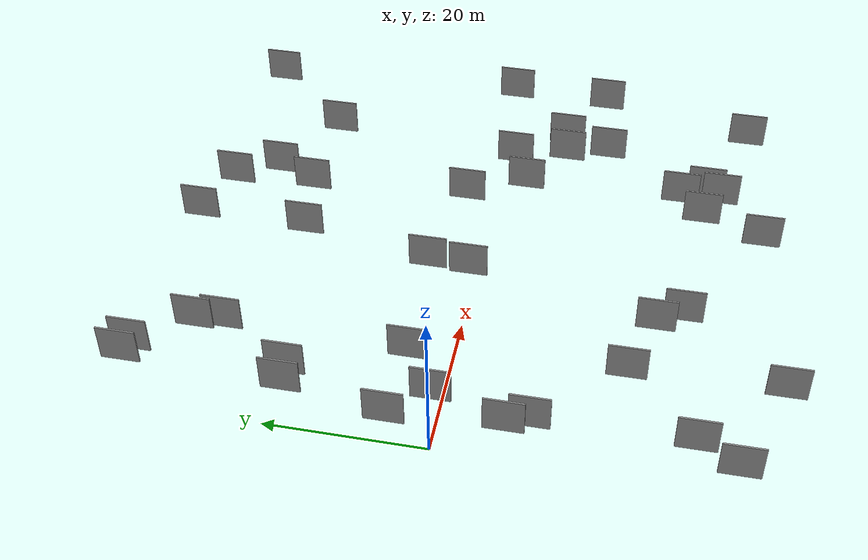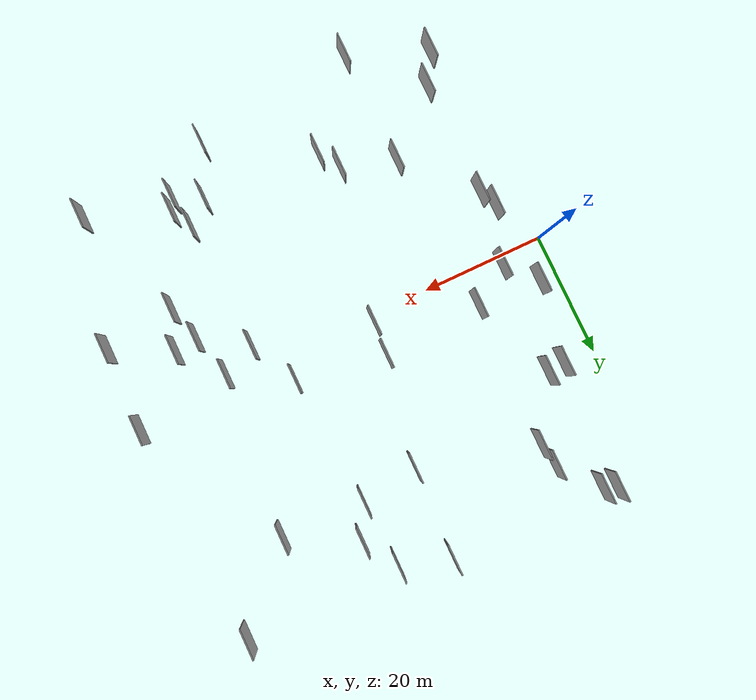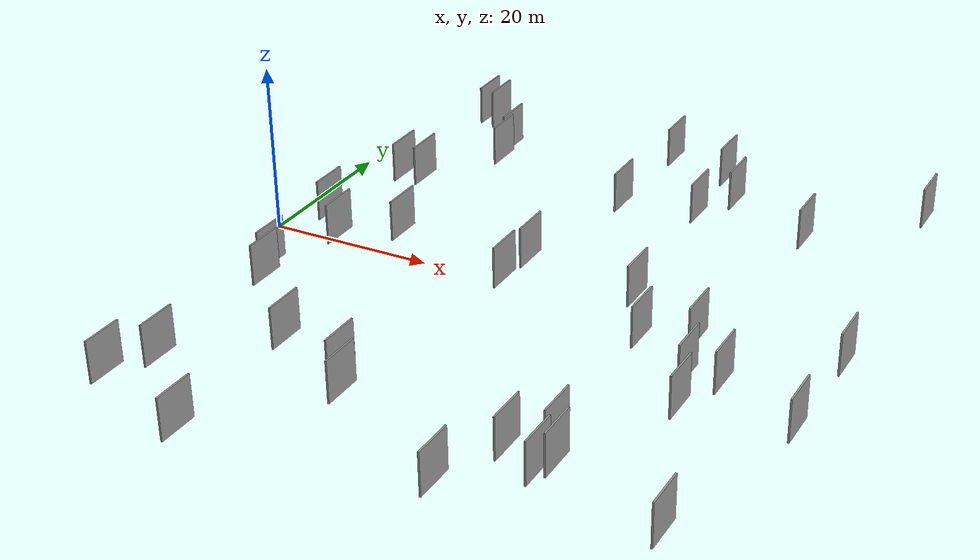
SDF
<sdf version="1.6">
 <world name="default">
  <scene>
   <sky><clouds><speed>12</speed></clouds></sky>
   <ambient>0.4 0.4 0.4 1</ambient>
   <background>0.7 0.7 0.7 1</background>
   <shadows>1</shadows>
  </scene>
  <gravity>0 0 -9.8066</gravity>
  <magnetic_field>6e-06 2.3e-05 -4.2e-05</magnetic_field>
  <physics default="0" name="default_physics" type="ode">
   <ode>
    <solver>
     <type>quick</type>
     <iters>10</iters>
     <sor>1.0</sor>
     <use_dynamic_moi_rescaling>0</use_dynamic_moi_rescaling>
    </solver>
    <constraints>
     <cfm>0</cfm>
     <erp>0.2</erp>
     <contact_max_correcting_vel>100</contact_max_correcting_vel>
     <contact_surface_layer>0.001</contact_surface_layer>
    </constraints>
   </ode>
   <max_step_size>0.004</max_step_size>
   <real_time_factor>1</real_time_factor>
   <real_time_update_rate>250</real_time_update_rate>
  </physics>
  <light name="sun" type="directional">
   <pose>0 0 10 0 0 0</pose>
   <diffuse>0.8 0.8 0.8 1</diffuse>
   <specular>0.2 0.2 0.2 1</specular>
   <attenuation>
    <range>1000</range>
    <constant>0.9</constant>
    <linear>0.01</linear>
    <quadratic>0.001</quadratic>
   </attenuation>
   <direction>-0.5 0.1 -0.9</direction>
  </light>
  <model name="grey_wall_1">
   <static>1</static>
   <pose>48.7667 -3.5897 0.0 0.000000 0.000000 1.570796</pose>
   <link name="link">
    <pose>0 0 2.50 0 0 0</pose>
    <collision name="collision"><geometry><box><size>5.00 0.2 5.00</size></box></geometry></collision>
    <visual name="visual">
     <cast_shadows>0</cast_shadows>
     <geometry><box><size>5.00 0.2 5.00</size></box></geometry>
     <material>
      <script>
       <uri>model://grey_wall/materials/scripts</uri>
       <uri>model://grey_wall/materials/textures</uri>
       <name>vrc/grey_wall</name>
      </script>
     </material>
    </visual>
   </link>
  </model>
  <model name="grey_wall_2">
   <static>1</static>
   <pose>8.6576 39.2392 0.0 0.000000 0.000000 1.570796</pose>
   <link name="link">
    <pose>0 0 2.50 0 0 0</pose>
    <collision name="collision"><geometry><box><size>5.00 0.2 5.00</size></box></geometry></collision>
    <visual name="visual">
     <cast_shadows>0</cast_shadows>
     <geometry><box><size>5.00 0.2 5.00</size></box></geometry>
     <material>
      <script>
       <uri>model://grey_wall/materials/scripts</uri>
       <uri>model://grey_wall/materials/textures</uri>
       <name>vrc/grey_wall</name>
      </script>
     </material>
    </visual>
   </link>
  </model>
  <model name="grey_wall_3">
   <static>1</static>
   <pose>5.6364 19.3057 0.0 0.000000 0.000000 1.570796</pose>
   <link name="link">
    <pose>0 0 2.50 0 0 0</pose>
    <collision name="collision"><geometry><box><size>5.00 0.2 5.00</size></box></geometry></collision>
    <visual name="visual">
     <cast_shadows>0</cast_shadows>
     <geometry><box><size>5.00 0.2 5.00</size></box></geometry>
     <material>
      <script>
       <uri>model://grey_wall/materials/scripts</uri>
       <uri>model://grey_wall/materials/textures</uri>
       <name>vrc/grey_wall</name>
      </script>
     </material>
    </visual>
   </link>
  </model>
  <model name="grey_wall_4">
   <static>1</static>
   <pose>42.3247 36.5289 0.0 0.000000 0.000000 1.570796</pose>
   <link name="link">
    <pose>0 0 2.50 0 0 0</pose>
    <collision name="collision"><geometry><box><size>5.00 0.2 5.00</size></box></geometry></collision>
    <visual name="visual">
     <cast_shadows>0</cast_shadows>
     <geometry><box><size>5.00 0.2 5.00</size></box></geometry>
     <material>
      <script>
       <uri>model://grey_wall/materials/scripts</uri>
       <uri>model://grey_wall/materials/textures</uri>
       <name>vrc/grey_wall</name>
      </script>
     </material>
    </visual>
   </link>
  </model>
  <model name="grey_wall_5">
   <static>1</static>
   <pose>29.7913 1.0914 0.0 0.000000 0.000000 1.570796</pose>
   <link name="link">
    <pose>0 0 2.50 0 0 0</pose>
    <collision name="collision"><geometry><box><size>5.00 0.2 5.00</size></box></geometry></collision>
    <visual name="visual">
     <cast_shadows>0</cast_shadows>
     <geometry><box><size>5.00 0.2 5.00</size></box></geometry>
     <material>
      <script>
       <uri>model://grey_wall/materials/scripts</uri>
       <uri>model://grey_wall/materials/textures</uri>
       <name>vrc/grey_wall</name>
      </script>
     </material>
    </visual>
   </link>
  </model>
  <model name="grey_wall_6">
   <static>1</static>
   <pose>56.1538 -8.3670 0.0 0.000000 0.000000 1.570796</pose>
   <link name="link">
    <pose>0 0 2.50 0 0 0</pose>
    <collision name="collision"><geometry><box><size>5.00 0.2 5.00</size></box></geometry></collision>
    <visual name="visual">
     <cast_shadows>0</cast_shadows>
     <geometry><box><size>5.00 0.2 5.00</size></box></geometry>
     <material>
      <script>
       <uri>model://grey_wall/materials/scripts</uri>
       <uri>model://grey_wall/materials/textures</uri>
       <name>vrc/grey_wall</name>
      </script>
     </material>
    </visual>
   </link>
  </model>
  <model name="grey_wall_7">
   <static>1</static>
   <pose>13.7642 5.5562 0.0 0.000000 0.000000 1.570796</pose>
   <link name="link">
    <pose>0 0 2.50 0 0 0</pose>
    <collision name="collision"><geometry><box><size>5.00 0.2 5.00</size></box></geometry></collision>
    <visual name="visual">
     <cast_shadows>0</cast_shadows>
     <geometry><box><size>5.00 0.2 5.00</size></box></geometry>
     <material>
      <script>
       <uri>model://grey_wall/materials/scripts</uri>
       <uri>model://grey_wall/materials/textures</uri>
       <name>vrc/grey_wall</name>
      </script>
     </material>
    </visual>
   </link>
  </model>
  <model name="grey_wall_8">
   <static>1</static>
   <pose>43.0100 25.6684 0.0 0.000000 0.000000 1.570796</pose>
   <link name="link">
    <pose>0 0 2.50 0 0 0</pose>
    <collision name="collision"><geometry><box><size>5.00 0.2 5.00</size></box></geometry></collision>
    <visual name="visual">
     <cast_shadows>0</cast_shadows>
     <geometry><box><size>5.00 0.2 5.00</size></box></geometry>
     <material>
      <script>
       <uri>model://grey_wall/materials/scripts</uri>
       <uri>model://grey_wall/materials/textures</uri>
       <name>vrc/grey_wall</name>
      </script>
     </material>
    </visual>
   </link>
  </model>
  <model name="grey_wall_9">
   <static>1</static>
   <pose>69.5566 -12.5910 0.0 0.000000 0.000000 1.570796</pose>
   <link name="link">
    <pose>0 0 2.50 0 0 0</pose>
    <collision name="collision"><geometry><box><size>5.00 0.2 5.00</size></box></geometry></collision>
    <visual name="visual">
     <cast_shadows>0</cast_shadows>
     <geometry><box><size>5.00 0.2 5.00</size></box></geometry>
     <material>
      <script>
       <uri>model://grey_wall/materials/scripts</uri>
       <uri>model://grey_wall/materials/textures</uri>
       <name>vrc/grey_wall</name>
      </script>
     </material>
    </visual>
   </link>
  </model>
  <model name="grey_wall_10">
   <static>1</static>
   <pose>3.0416 -34.9562 0.0 0.000000 0.000000 1.570796</pose>
   <link name="link">
    <pose>0 0 2.50 0 0 0</pose>
    <collision name="collision"><geometry><box><size>5.00 0.2 5.00</size></box></geometry></collision>
    <visual name="visual">
     <cast_shadows>0</cast_shadows>
     <geometry><box><size>5.00 0.2 5.00</size></box></geometry>
     <material>
      <script>
       <uri>model://grey_wall/materials/scripts</uri>
       <uri>model://grey_wall/materials/textures</uri>
       <name>vrc/grey_wall</name>
      </script>
     </material>
    </visual>
   </link>
  </model>
  <model name="grey_wall_11">
   <static>1</static>
   <pose>34.2192 38.9786 0.0 0.000000 0.000000 1.570796</pose>
   <link name="link">
    <pose>0 0 2.50 0 0 0</pose>
    <collision name="collision"><geometry><box><size>5.00 0.2 5.00</size></box></geometry></collision>
    <visual name="visual">
     <cast_shadows>0</cast_shadows>
     <geometry><box><size>5.00 0.2 5.00</size></box></geometry>
     <material>
      <script>
       <uri>model://grey_wall/materials/scripts</uri>
       <uri>model://grey_wall/materials/textures</uri>
       <name>vrc/grey_wall</name>
      </script>
     </material>
    </visual>
   </link>
  </model>
  <model name="grey_wall_12">
   <static>1</static>
   <pose>5.6495 -10.6741 0.0 0.000000 0.000000 1.570796</pose>
   <link name="link">
    <pose>0 0 2.50 0 0 0</pose>
    <collision name="collision"><geometry><box><size>5.00 0.2 5.00</size></box></geometry></collision>
    <visual name="visual">
     <cast_shadows>0</cast_shadows>
     <geometry><box><size>5.00 0.2 5.00</size></box></geometry>
     <material>
      <script>
       <uri>model://grey_wall/materials/scripts</uri>
       <uri>model://grey_wall/materials/textures</uri>
       <name>vrc/grey_wall</name>
      </script>
     </material>
    </visual>
   </link>
  </model>
  <model name="grey_wall_13">
   <static>1</static>
   <pose>14.3920 29.3328 0.0 0.000000 0.000000 1.570796</pose>
   <link name="link">
    <pose>0 0 2.50 0 0 0</pose>
    <collision name="collision"><geometry><box><size>5.00 0.2 5.00</size></box></geometry></collision>
    <visual name="visual">
     <cast_shadows>0</cast_shadows>
     <geometry><box><size>5.00 0.2 5.00</size></box></geometry>
     <material>
      <script>
       <uri>model://grey_wall/materials/scripts</uri>
       <uri>model://grey_wall/materials/textures</uri>
       <name>vrc/grey_wall</name>
      </script>
     </material>
    </visual>
   </link>
  </model>
  <model name="grey_wall_14">
   <static>1</static>
   <pose>45.7584 30.9657 0.0 0.000000 0.000000 1.570796</pose>
   <link name="link">
    <pose>0 0 2.50 0 0 0</pose>
    <collision name="collision"><geometry><box><size>5.00 0.2 5.00</size></box></geometry></collision>
    <visual name="visual">
     <cast_shadows>0</cast_shadows>
     <geometry><box><size>5.00 0.2 5.00</size></box></geometry>
     <material>
      <script>
       <uri>model://grey_wall/materials/scripts</uri>
       <uri>model://grey_wall/materials/textures</uri>
       <name>vrc/grey_wall</name>
      </script>
     </material>
    </visual>
   </link>
  </model>
  <model name="grey_wall_15">
   <static>1</static>
   <pose>54.2456 -1.1777 0.0 0.000000 0.000000 1.570796</pose>
   <link name="link">
    <pose>0 0 2.50 0 0 0</pose>
    <collision name="collision"><geometry><box><size>5.00 0.2 5.00</size></box></geometry></collision>
    <visual name="visual">
     <cast_shadows>0</cast_shadows>
     <geometry><box><size>5.00 0.2 5.00</size></box></geometry>
     <material>
      <script>
       <uri>model://grey_wall/materials/scripts</uri>
       <uri>model://grey_wall/materials/textures</uri>
       <name>vrc/grey_wall</name>
      </script>
     </material>
    </visual>
   </link>
  </model>
  <model name="grey_wall_16">
   <static>1</static>
   <pose>7.5877 1.4294 0.0 0.000000 0.000000 1.570796</pose>
   <link name="link">
    <pose>0 0 2.50 0 0 0</pose>
    <collision name="collision"><geometry><box><size>5.00 0.2 5.00</size></box></geometry></collision>
    <visual name="visual">
     <cast_shadows>0</cast_shadows>
     <geometry><box><size>5.00 0.2 5.00</size></box></geometry>
     <material>
      <script>
       <uri>model://grey_wall/materials/scripts</uri>
       <uri>model://grey_wall/materials/textures</uri>
       <name>vrc/grey_wall</name>
      </script>
     </material>
    </visual>
   </link>
  </model>
  <model name="grey_wall_17">
   <static>1</static>
   <pose>30.2131 6.5364 0.0 0.000000 0.000000 1.570796</pose>
   <link name="link">
    <pose>0 0 2.50 0 0 0</pose>
    <collision name="collision"><geometry><box><size>5.00 0.2 5.00</size></box></geometry></collision>
    <visual name="visual">
     <cast_shadows>0</cast_shadows>
     <geometry><box><size>5.00 0.2 5.00</size></box></geometry>
     <material>
      <script>
       <uri>model://grey_wall/materials/scripts</uri>
       <uri>model://grey_wall/materials/textures</uri>
       <name>vrc/grey_wall</name>
      </script>
     </material>
    </visual>
   </link>
  </model>
  <model name="grey_wall_18">
   <static>1</static>
   <pose>67.7466 37.0043 0.0 0.000000 0.000000 1.570796</pose>
   <link name="link">
    <pose>0 0 2.50 0 0 0</pose>
    <collision name="collision"><geometry><box><size>5.00 0.2 5.00</size></box></geometry></collision>
    <visual name="visual">
     <cast_shadows>0</cast_shadows>
     <geometry><box><size>5.00 0.2 5.00</size></box></geometry>
     <material>
      <script>
       <uri>model://grey_wall/materials/scripts</uri>
       <uri>model://grey_wall/materials/textures</uri>
       <name>vrc/grey_wall</name>
      </script>
     </material>
    </visual>
   </link>
  </model>
  <model name="grey_wall_19">
   <static>1</static>
   <pose>69.8926 1.0822 0.0 0.000000 0.000000 1.570796</pose>
   <link name="link">
    <pose>0 0 2.50 0 0 0</pose>
    <collision name="collision"><geometry><box><size>5.00 0.2 5.00</size></box></geometry></collision>
    <visual name="visual">
     <cast_shadows>0</cast_shadows>
     <geometry><box><size>5.00 0.2 5.00</size></box></geometry>
     <material>
      <script>
       <uri>model://grey_wall/materials/scripts</uri>
       <uri>model://grey_wall/materials/textures</uri>
       <name>vrc/grey_wall</name>
      </script>
     </material>
    </visual>
   </link>
  </model>
  <model name="grey_wall_20">
   <static>1</static>
   <pose>51.3743 -28.3332 0.0 0.000000 0.000000 1.570796</pose>
   <link name="link">
    <pose>0 0 2.50 0 0 0</pose>
    <collision name="collision"><geometry><box><size>5.00 0.2 5.00</size></box></geometry></collision>
    <visual name="visual">
     <cast_shadows>0</cast_shadows>
     <geometry><box><size>5.00 0.2 5.00</size></box></geometry>
     <material>
      <script>
       <uri>model://grey_wall/materials/scripts</uri>
       <uri>model://grey_wall/materials/textures</uri>
       <name>vrc/grey_wall</name>
      </script>
     </material>
    </visual>
   </link>
  </model>
  <model name="grey_wall_21">
   <static>1</static>
   <pose>15.5185 -20.9836 0.0 0.000000 0.000000 1.570796</pose>
   <link name="link">
    <pose>0 0 2.50 0 0 0</pose>
    <collision name="collision"><geometry><box><size>5.00 0.2 5.00</size></box></geometry></collision>
    <visual name="visual">
     <cast_shadows>0</cast_shadows>
     <geometry><box><size>5.00 0.2 5.00</size></box></geometry>
     <material>
      <script>
       <uri>model://grey_wall/materials/scripts</uri>
       <uri>model://grey_wall/materials/textures</uri>
       <name>vrc/grey_wall</name>
      </script>
     </material>
    </visual>
   </link>
  </model>
  <model name="grey_wall_22">
   <static>1</static>
   <pose>64.6149 -33.4672 0.0 0.000000 0.000000 1.570796</pose>
   <link name="link">
    <pose>0 0 2.50 0 0 0</pose>
    <collision name="collision"><geometry><box><size>5.00 0.2 5.00</size></box></geometry></collision>
    <visual name="visual">
     <cast_shadows>0</cast_shadows>
     <geometry><box><size>5.00 0.2 5.00</size></box></geometry>
     <material>
      <script>
       <uri>model://grey_wall/materials/scripts</uri>
       <uri>model://grey_wall/materials/textures</uri>
       <name>vrc/grey_wall</name>
      </script>
     </material>
    </visual>
   </link>
  </model>
  <model name="grey_wall_23">
   <static>1</static>
   <pose>49.6263 -24.9053 0.0 0.000000 0.000000 1.570796</pose>
   <link name="link">
    <pose>0 0 2.50 0 0 0</pose>
    <collision name="collision"><geometry><box><size>5.00 0.2 5.00</size></box></geometry></collision>
    <visual name="visual">
     <cast_shadows>0</cast_shadows>
     <geometry><box><size>5.00 0.2 5.00</size></box></geometry>
     <material>
      <script>
       <uri>model://grey_wall/materials/scripts</uri>
       <uri>model://grey_wall/materials/textures</uri>
       <name>vrc/grey_wall</name>
      </script>
     </material>
    </visual>
   </link>
  </model>
  <model name="grey_wall_24">
   <static>1</static>
   <pose>57.7437 -14.0495 0.0 0.000000 0.000000 1.570796</pose>
   <link name="link">
    <pose>0 0 2.50 0 0 0</pose>
    <collision name="collision"><geometry><box><size>5.00 0.2 5.00</size></box></geometry></collision>
    <visual name="visual">
     <cast_shadows>0</cast_shadows>
     <geometry><box><size>5.00 0.2 5.00</size></box></geometry>
     <material>
      <script>
       <uri>model://grey_wall/materials/scripts</uri>
       <uri>model://grey_wall/materials/textures</uri>
       <name>vrc/grey_wall</name>
      </script>
     </material>
    </visual>
   </link>
  </model>
  <model name="grey_wall_25">
   <static>1</static>
   <pose>56.6269 25.2751 0.0 0.000000 0.000000 1.570796</pose>
   <link name="link">
    <pose>0 0 2.50 0 0 0</pose>
    <collision name="collision"><geometry><box><size>5.00 0.2 5.00</size></box></geometry></collision>
    <visual name="visual">
     <cast_shadows>0</cast_shadows>
     <geometry><box><size>5.00 0.2 5.00</size></box></geometry>
     <material>
      <script>
       <uri>model://grey_wall/materials/scripts</uri>
       <uri>model://grey_wall/materials/textures</uri>
       <name>vrc/grey_wall</name>
      </script>
     </material>
    </visual>
   </link>
  </model>
  <model name="grey_wall_26">
   <static>1</static>
   <pose>24.2420 -23.7374 0.0 0.000000 0.000000 1.570796</pose>
   <link name="link">
    <pose>0 0 2.50 0 0 0</pose>
    <collision name="collision"><geometry><box><size>5.00 0.2 5.00</size></box></geometry></collision>
    <visual name="visual">
     <cast_shadows>0</cast_shadows>
     <geometry><box><size>5.00 0.2 5.00</size></box></geometry>
     <material>
      <script>
       <uri>model://grey_wall/materials/scripts</uri>
       <uri>model://grey_wall/materials/textures</uri>
       <name>vrc/grey_wall</name>
      </script>
     </material>
    </visual>
   </link>
  </model>
  <model name="grey_wall_27">
   <static>1</static>
   <pose>13.8191 32.9090 0.0 0.000000 0.000000 1.570796</pose>
   <link name="link">
    <pose>0 0 2.50 0 0 0</pose>
    <collision name="collision"><geometry><box><size>5.00 0.2 5.00</size></box></geometry></collision>
    <visual name="visual">
     <cast_shadows>0</cast_shadows>
     <geometry><box><size>5.00 0.2 5.00</size></box></geometry>
     <material>
      <script>
       <uri>model://grey_wall/materials/scripts</uri>
       <uri>model://grey_wall/materials/textures</uri>
       <name>vrc/grey_wall</name>
      </script>
     </material>
    </visual>
   </link>
  </model>
  <model name="grey_wall_28">
   <static>1</static>
   <pose>50.3876 -30.3457 0.0 0.000000 0.000000 1.570796</pose>
   <link name="link">
    <pose>0 0 2.50 0 0 0</pose>
    <collision name="collision"><geometry><box><size>5.00 0.2 5.00</size></box></geometry></collision>
    <visual name="visual">
     <cast_shadows>0</cast_shadows>
     <geometry><box><size>5.00 0.2 5.00</size></box></geometry>
     <material>
      <script>
       <uri>model://grey_wall/materials/scripts</uri>
       <uri>model://grey_wall/materials/textures</uri>
       <name>vrc/grey_wall</name>
      </script>
     </material>
    </visual>
   </link>
  </model>
  <model name="grey_wall_29">
   <static>1</static>
   <pose>45.9056 -28.0840 0.0 0.000000 0.000000 1.570796</pose>
   <link name="link">
    <pose>0 0 2.50 0 0 0</pose>
    <collision name="collision"><geometry><box><size>5.00 0.2 5.00</size></box></geometry></collision>
    <visual name="visual">
     <cast_shadows>0</cast_shadows>
     <geometry><box><size>5.00 0.2 5.00</size></box></geometry>
     <material>
      <script>
       <uri>model://grey_wall/materials/scripts</uri>
       <uri>model://grey_wall/materials/textures</uri>
       <name>vrc/grey_wall</name>
      </script>
     </material>
    </visual>
   </link>
  </model>
  <model name="grey_wall_30">
   <static>1</static>
   <pose>8.4606 19.5830 0.0 0.000000 0.000000 1.570796</pose>
   <link name="link">
    <pose>0 0 2.50 0 0 0</pose>
    <collision name="collision"><geometry><box><size>5.00 0.2 5.00</size></box></geometry></collision>
    <visual name="visual">
     <cast_shadows>0</cast_shadows>
     <geometry><box><size>5.00 0.2 5.00</size></box></geometry>
     <material>
      <script>
       <uri>model://grey_wall/materials/scripts</uri>
       <uri>model://grey_wall/materials/textures</uri>
       <name>vrc/grey_wall</name>
      </script>
     </material>
    </visual>
   </link>
  </model>
  <model name="grey_wall_31">
   <static>1</static>
   <pose>15.9250 -39.9434 0.0 0.000000 0.000000 1.570796</pose>
   <link name="link">
    <pose>0 0 2.50 0 0 0</pose>
    <collision name="collision"><geometry><box><size>5.00 0.2 5.00</size></box></geometry></collision>
    <visual name="visual">
     <cast_shadows>0</cast_shadows>
     <geometry><box><size>5.00 0.2 5.00</size></box></geometry>
     <material>
      <script>
       <uri>model://grey_wall/materials/scripts</uri>
       <uri>model://grey_wall/materials/textures</uri>
       <name>vrc/grey_wall</name>
      </script>
     </material>
    </visual>
   </link>
  </model>
  <model name="grey_wall_32">
   <static>1</static>
   <pose>4.4493 -7.8242 0.0 0.000000 0.000000 1.570796</pose>
   <link name="link">
    <pose>0 0 2.50 0 0 0</pose>
    <collision name="collision"><geometry><box><size>5.00 0.2 5.00</size></box></geometry></collision>
    <visual name="visual">
     <cast_shadows>0</cast_shadows>
     <geometry><box><size>5.00 0.2 5.00</size></box></geometry>
     <material>
      <script>
       <uri>model://grey_wall/materials/scripts</uri>
       <uri>model://grey_wall/materials/textures</uri>
       <name>vrc/grey_wall</name>
      </script>
     </material>
    </visual>
   </link>
  </model>
  <model name="grey_wall_33">
   <static>1</static>
   <pose>42.6043 -36.2293 0.0 0.000000 0.000000 1.570796</pose>
   <link name="link">
    <pose>0 0 2.50 0 0 0</pose>
    <collision name="collision"><geometry><box><size>5.00 0.2 5.00</size></box></geometry></collision>
    <visual name="visual">
     <cast_shadows>0</cast_shadows>
     <geometry><box><size>5.00 0.2 5.00</size></box></geometry>
     <material>
      <script>
       <uri>model://grey_wall/materials/scripts</uri>
       <uri>model://grey_wall/materials/textures</uri>
       <name>vrc/grey_wall</name>
      </script>
     </material>
    </visual>
   </link>
  </model>
  <model name="grey_wall_34">
   <static>1</static>
   <pose>3.2122 6.1103 0.0 0.000000 0.000000 1.570796</pose>
   <link name="link">
    <pose>0 0 2.50 0 0 0</pose>
    <collision name="collision"><geometry><box><size>5.00 0.2 5.00</size></box></geometry></collision>
    <visual name="visual">
     <cast_shadows>0</cast_shadows>
     <geometry><box><size>5.00 0.2 5.00</size></box></geometry>
     <material>
      <script>
       <uri>model://grey_wall/materials/scripts</uri>
       <uri>model://grey_wall/materials/textures</uri>
       <name>vrc/grey_wall</name>
      </script>
     </material>
    </visual>
   </link>
  </model>
  <model name="grey_wall_35">
   <static>1</static>
   <pose>26.4866 -27.0158 0.0 0.000000 0.000000 1.570796</pose>
   <link name="link">
    <pose>0 0 2.50 0 0 0</pose>
    <collision name="collision"><geometry><box><size>5.00 0.2 5.00</size></box></geometry></collision>
    <visual name="visual">
     <cast_shadows>0</cast_shadows>
     <geometry><box><size>5.00 0.2 5.00</size></box></geometry>
     <material>
      <script>
       <uri>model://grey_wall/materials/scripts</uri>
       <uri>model://grey_wall/materials/textures</uri>
       <name>vrc/grey_wall</name>
      </script>
     </material>
    </visual>
   </link>
  </model>
  <model name="grey_wall_36">
   <static>1</static>
   <pose>44.7572 4.0832 0.0 0.000000 0.000000 1.570796</pose>
   <link name="link">
    <pose>0 0 2.50 0 0 0</pose>
    <collision name="collision"><geometry><box><size>5.00 0.2 5.00</size></box></geometry></collision>
    <visual name="visual">
     <cast_shadows>0</cast_shadows>
     <geometry><box><size>5.00 0.2 5.00</size></box></geometry>
     <material>
      <script>
       <uri>model://grey_wall/materials/scripts</uri>
       <uri>model://grey_wall/materials/textures</uri>
       <name>vrc/grey_wall</name>
      </script>
     </material>
    </visual>
   </link>
  </model>
  <model name="grey_wall_37">
   <static>1</static>
   <pose>59.9113 -7.8884 0.0 0.000000 0.000000 1.570796</pose>
   <link name="link">
    <pose>0 0 2.50 0 0 0</pose>
    <collision name="collision"><geometry><box><size>5.00 0.2 5.00</size></box></geometry></collision>
    <visual name="visual">
     <cast_shadows>0</cast_shadows>
     <geometry><box><size>5.00 0.2 5.00</size></box></geometry>
     <material>
      <script>
       <uri>model://grey_wall/materials/scripts</uri>
       <uri>model://grey_wall/materials/textures</uri>
       <name>vrc/grey_wall</name>
      </script>
     </material>
    </visual>
   </link>
  </model>
  <model name="grey_wall_38">
   <static>1</static>
   <pose>6.6195 39.8515 0.0 0.000000 0.000000 1.570796</pose>
   <link name="link">
    <pose>0 0 2.50 0 0 0</pose>
    <collision name="collision"><geometry><box><size>5.00 0.2 5.00</size></box></geometry></collision>
    <visual name="visual">
     <cast_shadows>0</cast_shadows>
     <geometry><box><size>5.00 0.2 5.00</size></box></geometry>
     <material>
      <script>
       <uri>model://grey_wall/materials/scripts</uri>
       <uri>model://grey_wall/materials/textures</uri>
       <name>vrc/grey_wall</name>
      </script>
     </material>
    </visual>
   </link>
  </model>
  <model name="grey_wall_39">
   <static>1</static>
   <pose>5.8983 -29.9220 0.0 0.000000 0.000000 1.570796</pose>
   <link name="link">
    <pose>0 0 2.50 0 0 0</pose>
    <collision name="collision"><geometry><box><size>5.00 0.2 5.00</size></box></geometry></collision>
    <visual name="visual">
     <cast_shadows>0</cast_shadows>
     <geometry><box><size>5.00 0.2 5.00</size></box></geometry>
     <material>
      <script>
       <uri>model://grey_wall/materials/scripts</uri>
       <uri>model://grey_wall/materials/textures</uri>
       <name>vrc/grey_wall</name>
      </script>
     </material>
    </visual>
   </link>
  </model>
  <model name="grey_wall_40">
   <static>1</static>
   <pose>33.6944 24.1859 0.0 0.000000 0.000000 1.570796</pose>
   <link name="link">
    <pose>0 0 2.50 0 0 0</pose>
    <collision name="collision"><geometry><box><size>5.00 0.2 5.00</size></box></geometry></collision>
    <visual name="visual">
     <cast_shadows>0</cast_shadows>
     <geometry><box><size>5.00 0.2 5.00</size></box></geometry>
     <material>
      <script>
       <uri>model://grey_wall/materials/scripts</uri>
       <uri>model://grey_wall/materials/textures</uri>
       <name>vrc/grey_wall</name>
      </script>
     </material>
    </visual>
   </link>
  </model>
 </world>
</sdf>
